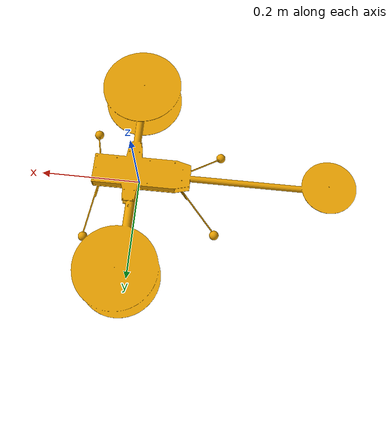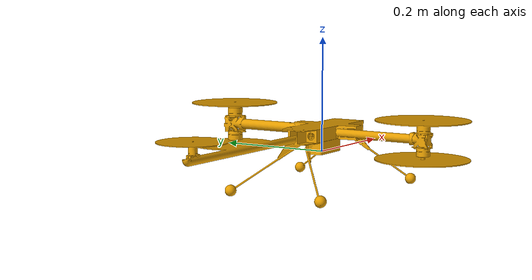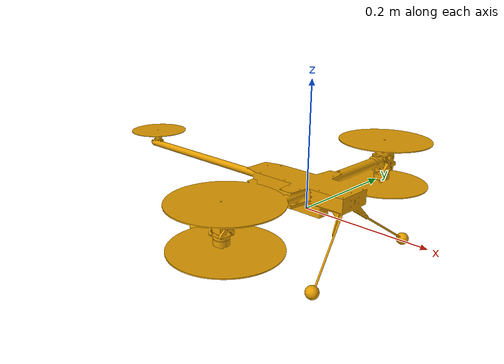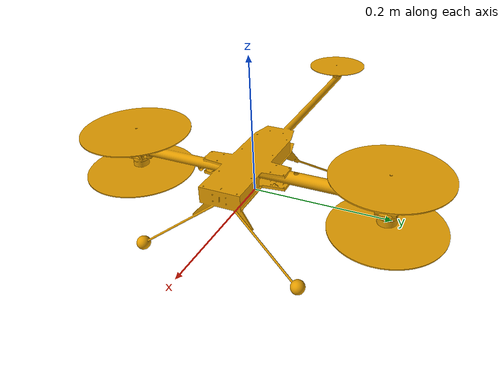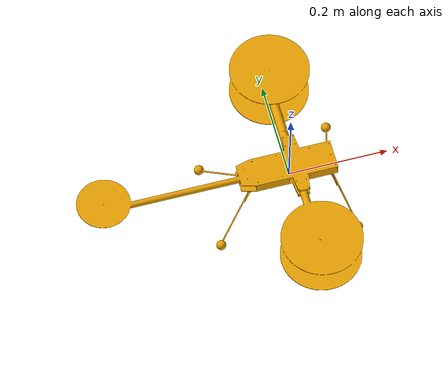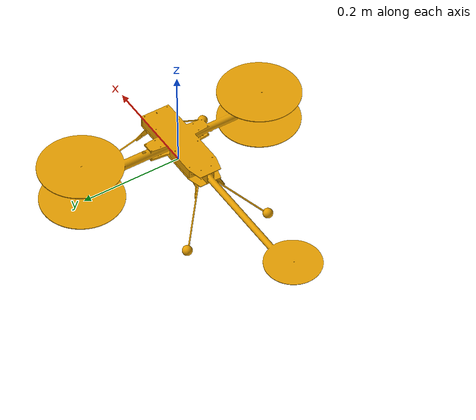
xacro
<?xml version='1.0' encoding='utf-8'?>
<robot name='kolibri' xmlns:xacro='http://ros.org/wiki/xacro'>
  <xacro:arg name="name" default="shafter"/>
  <xacro:property name="robot_namespace" value="$(arg name)"/>
  <link name='${robot_namespace}/base_link'>
    <inertial>
      <origin xyz='0 0 0' rpy='0 -0 0'/>
      <mass value='5.7'/>
      <inertia ixx='0.59' ixy='0' ixz='0' iyy='0.59' iyz='0' izz='0.95'/>
    </inertial>
    <collision name='collision'>
      <origin xyz='0 0 0' rpy='0 -0 0'/>
      <geometry>
        <mesh filename='package://cerberus_kolibri_sensor_config_1/meshes/voliro_t.stl' scale='1 1 1'/>
      </geometry>
    </collision>
    <visual name='base_link_visual'>
      <origin xyz='0 0 0' rpy='0 -0 0'/>
      <geometry>
        <mesh filename='package://cerberus_kolibri_sensor_config_1/meshes/voliro_t.dae' scale='1 1 1'/>
      </geometry>
    </visual>
  </link>
  <sensor name='imu_sensor' update_rate='250'>
    <parent link='${robot_namespace}/base_link'/>
    <origin xyz='0 0 0' rpy='0 -0 0'/>
  </sensor>
  <sensor name='top_lidar' update_rate='10'>
    <parent link='${robot_namespace}/base_link'/>
    <origin xyz='0.27 0 0.2676' rpy='0 -0 0'/>
  </sensor>
  <sensor name='camera_front_left' update_rate='20'>
    <parent link='${robot_namespace}/base_link'/>
    <origin xyz='0.1 0.15 -0.05' rpy='0 -0 0'/>
    <camera>
      <image width='728' height='544' format='R8G8B8' hfov='1.9' near='0.02' far='100' />
    </camera>
  </sensor>
  <sensor name='camera_front_right' update_rate='20'>
    <parent link='${robot_namespace}/base_link'/>
    <origin xyz='0.1 -0.15 -0.05' rpy='0 -0 0'/>
    <camera>
      <image width='728' height='544' format='R8G8B8' hfov='1.9' near='0.02' far='100' />
    </camera>
  </sensor>
  <sensor name='camera_down' update_rate='20'>
    <parent link='${robot_namespace}/base_link'/>
    <origin xyz='0 0 -0.1' rpy='0 1.5708 0'/>
    <camera>
      <image width='728' height='544' format='R8G8B8' hfov='1.9' near='0.02' far='100' />
    </camera>
  </sensor>
  <sensor name='camera_back_left' update_rate='20'>
    <parent link='${robot_namespace}/base_link'/>
    <origin xyz='-0.3 0.1 -0.05' rpy='0 0.09 2.35619'/>
    <camera>
      <image width='728' height='544' format='R8G8B8' hfov='1.9' near='0.02' far='100' />
    </camera>
  </sensor>
  <sensor name='camera_back_left2' update_rate='20'>
    <parent link='${robot_namespace}/base_link'/>
    <origin xyz='-0.3 0.1 -0.02' rpy='0 0.09 2.35619'/>
    <camera>
      <image width='728' height='544' format='R8G8B8' hfov='1.9' near='0.02' far='100' />
    </camera>
  </sensor>
  <sensor name='camera_back_right' update_rate='20'>
    <parent link='${robot_namespace}/base_link'/>
    <origin xyz='-0.3 -0.1 -0.05' rpy='0 0.09 -2.35619'/>
    <camera>
      <image width='728' height='544' format='R8G8B8' hfov='1.9' near='0.02' far='100' />
    </camera>
  </sensor>
</robot>
